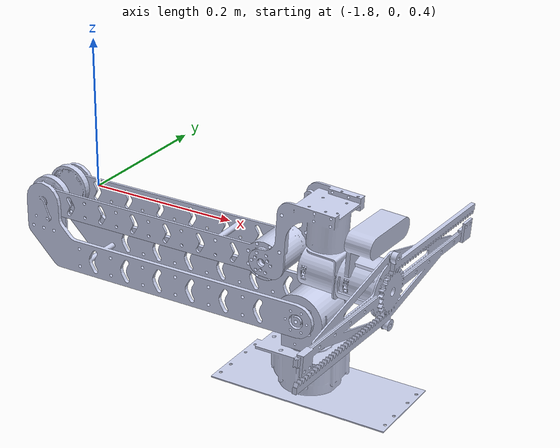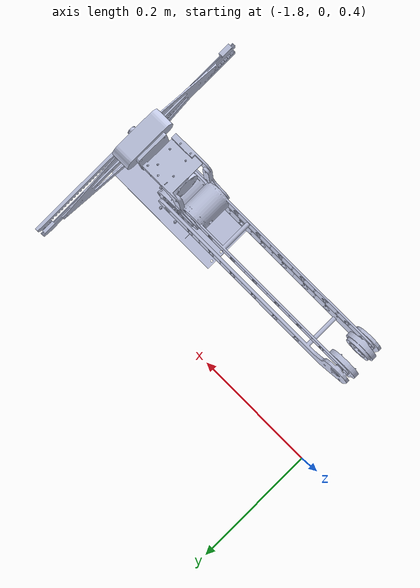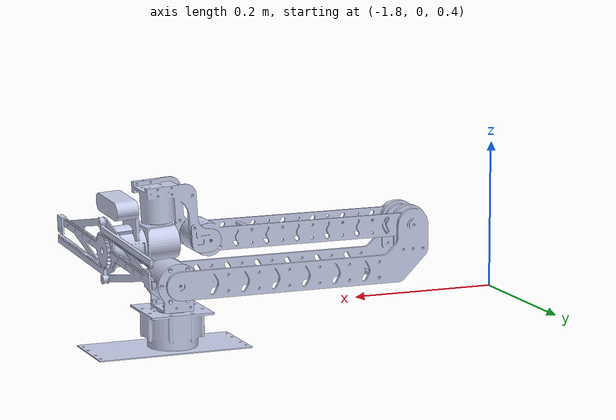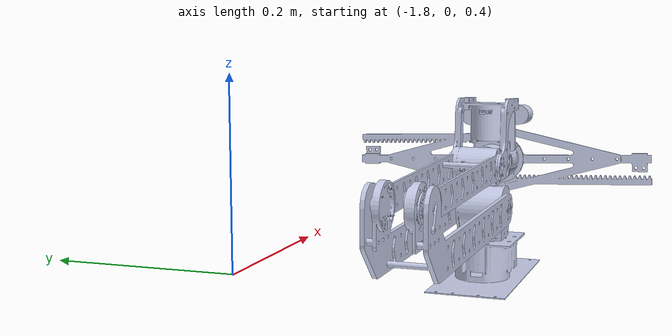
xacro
<?xml version="1.0"?>
<robot xmlns:xacro="http://www.ros.org/wiki/xacro" name="robo_arm_urdf_v1">
  <xacro:arg name="prefix" default="robo_arm_urdf_v1_" />
  <xacro:arg name="initial_positions_file" default="$(find robo_arm_urdf_v1_moveit_config)/config/initial_positions.yaml" />

  <xacro:include filename="$(find robo_arm_urdf_v1)/urdf/robo_arm_urdf_v1.urdf.xacro" />
  <xacro:include filename="$(find robo_arm_urdf_v1_moveit_config)/config/robo_arm_urdf_v1.ros2_control.xacro" />

  <xacro:robo_arm_urdf_v1_ros2_control
    name="FakeSystem"
    initial_positions_file="$(arg initial_positions_file)" />
</robot>

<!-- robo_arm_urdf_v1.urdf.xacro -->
<robot
  xmlns:xacro="http://www.ros.org/wiki/xacro"
  name="robo_arm_urdf_v1">
  <xacro:arg
    name="prefix"
    default="" />
  <link
    name="$(arg prefix)world" />
  <joint
    name="$(arg prefix)world_joint"
    type="fixed">
    <origin
      xyz="0 0 0"
      rpy="0 0 0" />
    <parent
      link="$(arg prefix)world" />
    <child
      link="$(arg prefix)base_link" />
  </joint>
  <link
    name="$(arg prefix)base_link">
    <inertial>
      <origin
        xyz="-1.3912 0.34063 0.15643"
        rpy="0 0 0" />
      <mass
        value="0.11857" />
      <inertia
        ixx="7.9902E-05"
        ixy="1.0902E-10"
        ixz="5.4721E-09"
        iyy="0.00025643"
        iyz="-6.7161E-08"
        izz="0.00018322" />
    </inertial>
    <visual>
      <origin
        xyz="0 0 0"
        rpy="0 0 0" />
      <geometry>
        <mesh
          filename="package://robo_arm_urdf_v1/meshes/base_link.STL" />
      </geometry>
      <material
        name="">
        <color
          rgba="0.79216 0.81961 0.93333 1" />
      </material>
    </visual>
    <collision>
      <origin
        xyz="-1.3835 -0.1578 0.3425"
        rpy="0 0 0" />
      <geometry>
        <box
          size="0.2200 0.1000 0.0535" />
      </geometry>
    </collision>
  </link>
  <link
    name="$(arg prefix)j0_link">
    <inertial>
      <origin
        xyz="-2.4752E-10 -0.00042154 0.036728"
        rpy="0 0 0" />
      <mass
        value="0.15667" />
      <inertia
        ixx="6.0452E-05"
        ixy="8.2429E-09"
        ixz="5.3028E-09"
        iyy="6.27E-05"
        iyz="1.0695E-09"
        izz="6.0687E-05" />
    </inertial>
    <visual>
      <origin
        xyz="0 0 0"
        rpy="0 0 0" />
      <geometry>
        <mesh
          filename="package://robo_arm_urdf_v1/meshes/j0_link.STL" />
      </geometry>
      <material
        name="">
        <color
          rgba="0.79216 0.81961 0.93333 1" />
      </material>
    </visual>
    <collision>
      <origin
        xyz="0 -0.0020 0.0347"
        rpy="0 0 0" />
      <geometry>
        <box
          size="0.0599 0.0630 0.0695" />
      </geometry>
    </collision>
  </link>
  <joint
    name="j0_joint"
    type="continuous">
    <origin
      xyz="-1.3942 -0.15611 0.36772"
      rpy="0 0 0" />
    <parent
      link="$(arg prefix)base_link" />
    <child
      link="$(arg prefix)j0_link" />
    <axis
      xyz="0 0 -1" />
  </joint>
  <link
    name="$(arg prefix)j1_link">
    <inertial>
      <origin
        xyz="-0.22479 -0.025473 0.016968"
        rpy="0 0 0" />
      <mass
        value="0.19737" />
      <inertia
        ixx="8.5854E-05"
        ixy="-4.1697E-10"
        ixz="0.00019248"
        iyy="0.0022337"
        iyz="-3.457E-08"
        izz="0.0021498" />
    </inertial>
    <visual>
      <origin
        xyz="0 0 0"
        rpy="0 0 0" />
      <geometry>
        <mesh
          filename="package://robo_arm_urdf_v1/meshes/j1_link.STL" />
      </geometry>
      <material
        name="">
        <color
          rgba="0.79216 0.81961 0.93333 1" />
      </material>
    </visual>
    <collision>
      <origin
        xyz="-0.1754 -0.0249 0.0330"
        rpy="0 0 0" />
      <geometry>
        <box
          size="0.3908 0.0750 0.1060" />
      </geometry>
    </collision>
  </link>
  <joint
    name="j1_joint"
    type="revolute">
    <origin
      xyz="0 0.0259 0.0395"
      rpy="0 0 0" />
    <parent
      link="$(arg prefix)j0_link" />
    <child
      link="$(arg prefix)j1_link" />
    <axis
      xyz="0 1 0" />
    <limit
      lower="0"
      upper="3.141593"
      effort="100"
      velocity="1.0" />
  </joint>
  <link
    name="$(arg prefix)j2_link">
    <inertial>
      <origin
        xyz="0.21201 -0.03973 0.00012795"
        rpy="0 0 0" />
      <mass
        value="0.096268" />
      <inertia
        ixx="1.2872E-05"
        ixy="-4.4199E-08"
        ixz="5.3818E-09"
        iyy="0.00051771"
        iyz="3.4241E-10"
        izz="0.00050752" />
    </inertial>
    <visual>
      <origin
        xyz="0 0 0"
        rpy="0 0 0" />
      <geometry>
        <mesh
          filename="package://robo_arm_urdf_v1/meshes/j2_link.STL" />
      </geometry>
      <material
        name="">
        <color
          rgba="0.79216 0.81961 0.93333 1" />
      </material>
    </visual>
    <collision>
      <origin
        xyz="0.1537 -0.0380 0"
        rpy="0 0 0" />
      <geometry>
        <box
          size="0.3386 0.0620 0.0460" />
      </geometry>
    </collision>
  </link>
  <joint
    name="j2_joint"
    type="revolute">
    <origin
      xyz="-0.34482 0.0126 0.06"
      rpy="0 0 0" />
    <parent
      link="$(arg prefix)j1_link" />
    <child
      link="$(arg prefix)j2_link" />
    <axis
      xyz="0 -1 0" />
    <limit
      lower="0"
      upper="3.141593"
      effort="100"
      velocity="1.0" />
  </joint>
  <link
    name="$(arg prefix)j3_link">
    <inertial>
      <origin
        xyz="0.051089 -0.031546 0.04618"
        rpy="0 0 0" />
      <mass
        value="0.069453" />
      <inertia
        ixx="2.777E-05"
        ixy="-4.6691E-08"
        ixz="-1.0245E-05"
        iyy="3.8371E-05"
        iyz="2.4014E-09"
        izz="2.6641E-05" />
    </inertial>
    <visual>
      <origin
        xyz="0 0 0"
        rpy="0 0 0" />
      <geometry>
        <mesh
          filename="package://robo_arm_urdf_v1/meshes/j3_link.STL" />
      </geometry>
      <material
        name="">
        <color
          rgba="0.79216 0.81961 0.93333 1" />
      </material>
    </visual>
    <collision>
      <origin
        xyz="0.0374 -0.0315 0.0317"
        rpy="0 0 0" />
      <geometry>
        <box
          size="0.1066 0.0670 0.0967" />
      </geometry>
    </collision>
  </link>
  <joint
    name="j3_joint"
    type="revolute">
    <origin
      xyz="0.3 -0.007 0"
      rpy="0 0 0" />
    <parent
      link="$(arg prefix)j2_link" />
    <child
      link="$(arg prefix)j3_link" />
    <axis
      xyz="0 -1 0" />
    <limit
      lower="-2.094395"
      upper="1.570796"
      effort="100"
      velocity="1.0" />
  </joint>
  <link
    name="$(arg prefix)j4_link">
    <inertial>
      <origin
        xyz="0.026045 -0.00013985 0.0059618"
        rpy="0 0 0" />
      <mass
        value="0.037921" />
      <inertia
        ixx="8.2276E-06"
        ixy="-5.382E-09"
        ixz="-5.9334E-07"
        iyy="8.4533E-06"
        iyz="4.9193E-08"
        izz="1.2754E-05" />
    </inertial>
    <visual>
      <origin
        xyz="0 0 0"
        rpy="0 0 0" />
      <geometry>
        <mesh
          filename="package://robo_arm_urdf_v1/meshes/j4_link.STL" />
      </geometry>
      <material
        name="">
        <color
          rgba="0.79216 0.81961 0.93333 1" />
      </material>
    </visual>
    <collision>
      <origin
        xyz="0.0260 0 0.0020"
        rpy="0 0 0" />
      <geometry>
        <box
          size="0.0520 0.0460 0.0480" />
      </geometry>
    </collision>
  </link>
  <joint
    name="j4_joint"
    type="revolute">
    <origin
      xyz="0.063536 -0.0325 0.024314"
      rpy="3.1416 1.5121 3.1416" />
    <parent
      link="$(arg prefix)j3_link" />
    <child
      link="$(arg prefix)j4_link" />
    <axis
      xyz="1 0 0" />
    <limit
      lower="-1.570796"
      upper="1.570796"
      effort="100"
      velocity="1.0" />
  </joint>
  <link
    name="$(arg prefix)j5_link">
    <inertial>
      <origin
        xyz="0.030298 0.0014655 0.033508"
        rpy="0 0 0" />
      <mass
        value="0.12822" />
      <inertia
        ixx="6.625E-05"
        ixy="1.8913E-07"
        ixz="1.0225E-06"
        iyy="2.7716E-05"
        iyz="1.5258E-06"
        izz="6.3488E-05" />
    </inertial>
    <visual>
      <origin
        xyz="0 0 0"
        rpy="0 0 0" />
      <geometry>
        <mesh
          filename="package://robo_arm_urdf_v1/meshes/j5_link.STL" />
      </geometry>
      <material
        name="">
        <color
          rgba="0.79216 0.81961 0.93333 1" />
      </material>
    </visual>
    <collision>
      <origin
        xyz="0.0257 0.0025 0.0194"
        rpy="0 0 0" />
      <geometry>
        <box
          size="0.0543 0.0894 0.1062" />
      </geometry>
    </collision>
  </link>
  <joint
    name="j5_joint"
    type="revolute">
    <origin
      xyz="0.029 0 0.026"
      rpy="3.1416 -1.5121 3.1416" />
    <parent
      link="$(arg prefix)j4_link" />
    <child
      link="$(arg prefix)j5_link" />
    <axis
      xyz="0.99828 0 -0.058677" />
    <limit
      lower="-3.141593"
      upper="3.141593"
      effort="100"
      velocity="1.0" />
  </joint>
  <link
    name="$(arg prefix)end_link">
    <inertial>
      <origin
        xyz="-0.0045218 -0.00012213 0.00027099"
        rpy="0 0 0" />
      <mass
        value="0.068323" />
      <inertia
        ixx="0.00024392"
        ixy="5.5583E-07"
        ixz="-6.1635E-07"
        iyy="1.0755E-05"
        iyz="9.4565E-06"
        izz="0.00023347" />
    </inertial>
    <visual>
      <origin
        xyz="0 0 0"
        rpy="0 0 0" />
      <geometry>
        <mesh
          filename="package://robo_arm_urdf_v1/meshes/end_link.STL" />
      </geometry>
      <material
        name="">
        <color
          rgba="0.79216 0.81961 0.93333 1" />
      </material>
    </visual>
    <collision>
      <origin
        xyz="-0.0034 -0.0004 0.0001"
        rpy="0 0 0" />
      <geometry>
        <box
          size="0.0164 0.3971 0.0937" />
      </geometry>
    </collision>
  </link>
  <joint
    name="end_joint"
    type="fixed">
    <origin
      xyz="0.056902 0 -0.0033446"
      rpy="0 0 0" />
    <parent
      link="$(arg prefix)j5_link" />
    <child
      link="$(arg prefix)end_link" />
    <axis
      xyz="0.99828 0 -0.058677" />
  </joint>
</robot>
